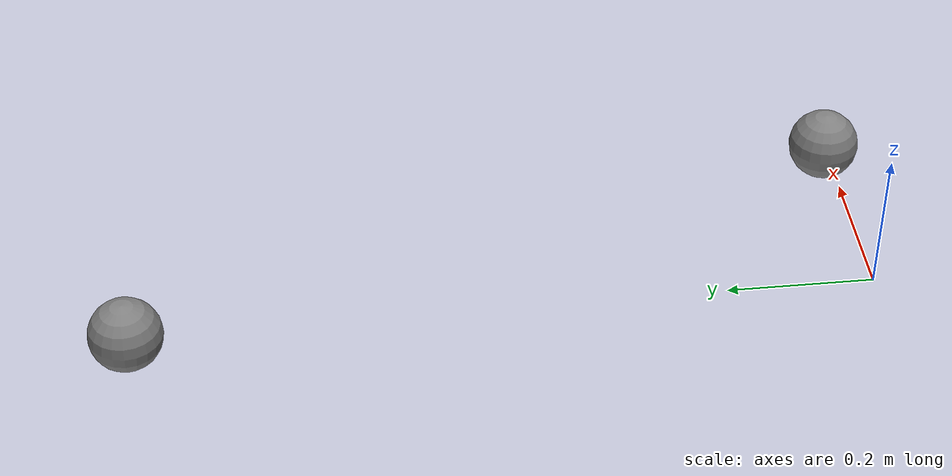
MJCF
<mujoco model="t38">
            <option gravity="0 0 0"/>
            <worldbody>
                <body name="bRef" pos="0 0 0">
                    <joint name="j1" type="hinge" axis="0 0 1"/>
                    <geom type="sphere" size="0.05" pos="0.3 0 0" mass="1"/>
                </body>
                <body name="bObj" pos="0 1 0">
                    <joint type="free"/>
                    <geom type="sphere" size="0.05" mass="1"/>
                    <site name="sObj" pos="0 0 0"/>
                </body>
            </worldbody>
            <sensor>
                <framepos site="sObj" reftype="body" refname="bRef"/>
                <framepos site="sObj" reftype="xbody" refname="bRef"/>
            </sensor>
        </mujoco>
